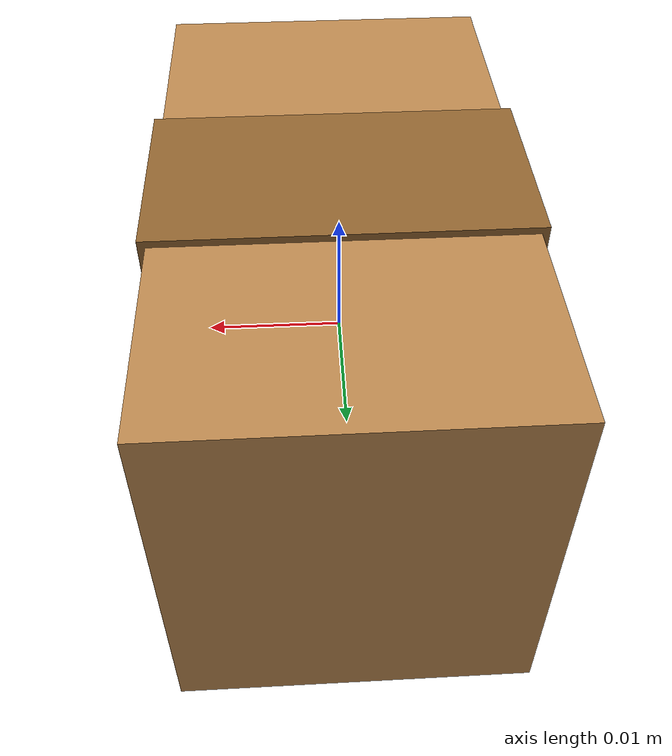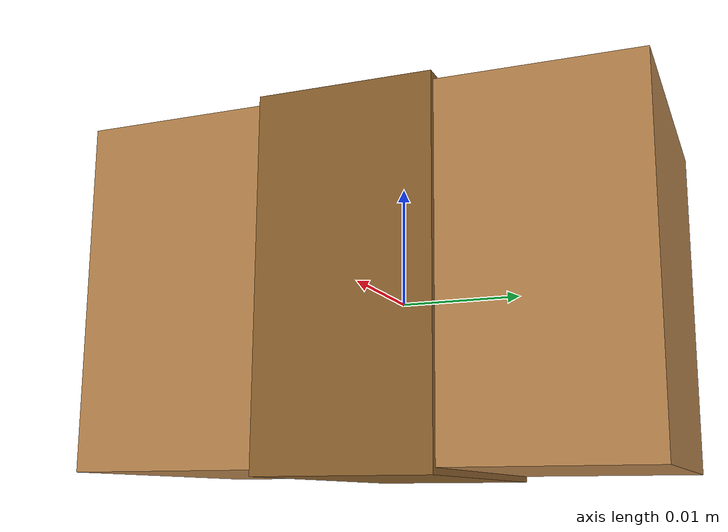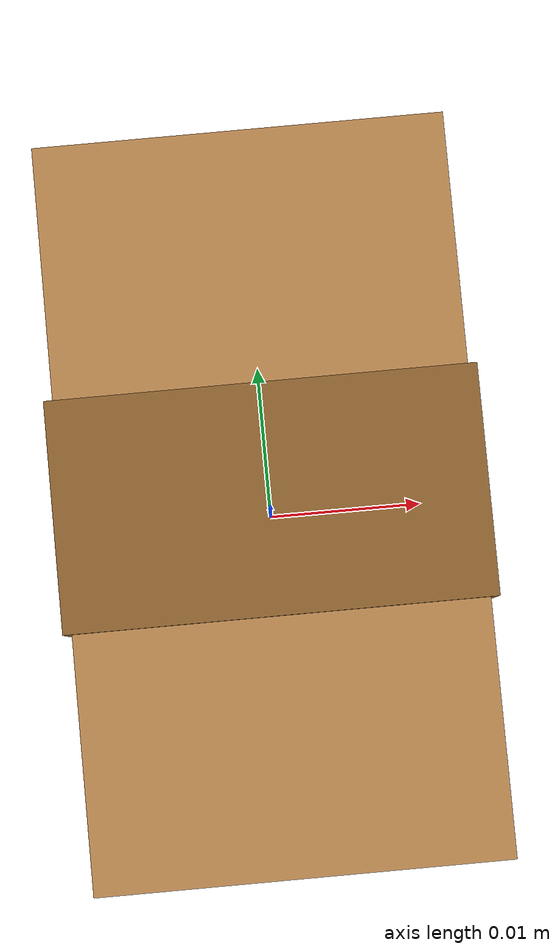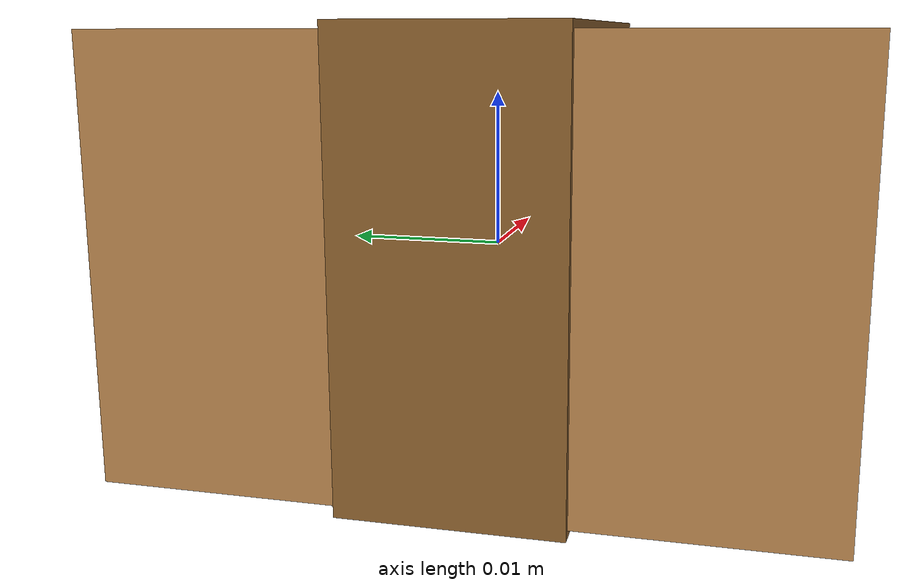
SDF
<?xml version="1.0"?>
<sdf version="1.8">
  <model name="delivery_box">
    <!--
      원본 비율 9:16:10 (depth:width:height) 유지, scale=0.2812
      25 x 45 x 28 mm — 그리퍼 파지 범위 2~5cm 대응
    -->
    <static>false</static>
    <link name="link">
      <inertial>
        <mass>0.1</mass>
        <inertia>
          <ixx>0.000023</ixx>
          <iyy>0.000012</iyy>
          <izz>0.000022</izz>
          <ixy>0</ixy>
          <ixz>0</ixz>
          <iyz>0</iyz>
        </inertia>
      </inertial>

      <visual name="body_visual">
        <geometry>
          <box>
            <size>0.025 0.045 0.028</size>
          </box>
        </geometry>
        <material>
          <ambient>0.72 0.52 0.30 1</ambient>
          <diffuse>0.72 0.52 0.30 1</diffuse>
          <specular>0.05 0.05 0.05 1</specular>
        </material>
      </visual>

      <!-- 덮개 중앙 테이프 -->
      <visual name="tape_visual">
        <geometry>
          <box>
            <size>0.026 0.014 0.029</size>
          </box>
        </geometry>
        <material>
          <ambient>0.55 0.38 0.18 1</ambient>
          <diffuse>0.55 0.38 0.18 1</diffuse>
          <specular>0.05 0.05 0.05 1</specular>
        </material>
      </visual>

      <collision name="collision">
        <geometry>
          <box>
            <size>0.025 0.045 0.028</size>
          </box>
        </geometry>
        <surface>
          <friction>
            <ode>
              <mu>0.7</mu>
              <mu2>0.7</mu2>
            </ode>
          </friction>
        </surface>
      </collision>
    </link>
  </model>
</sdf>
